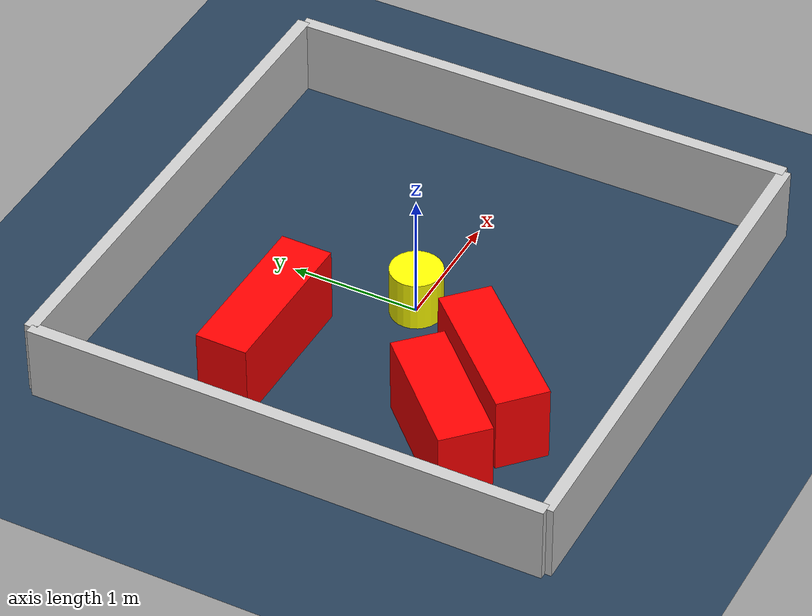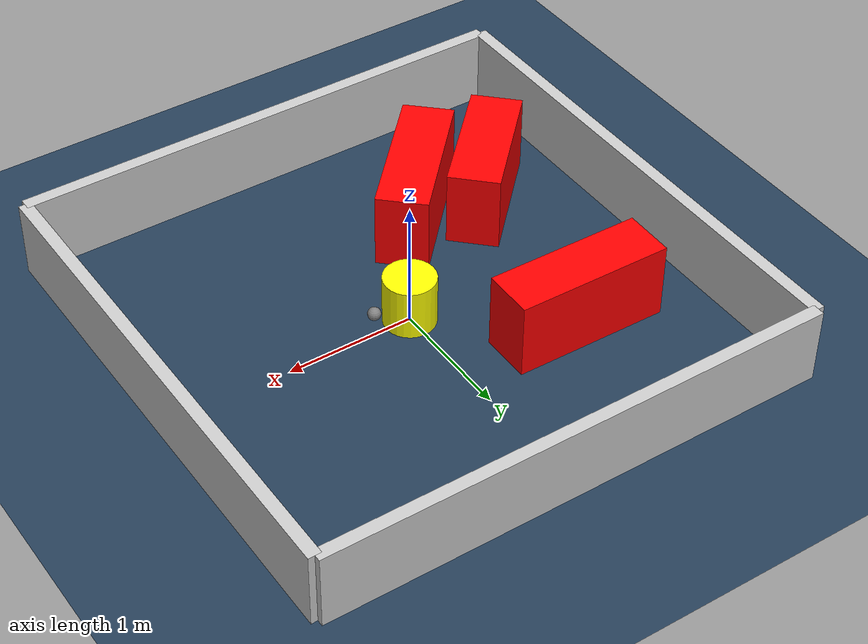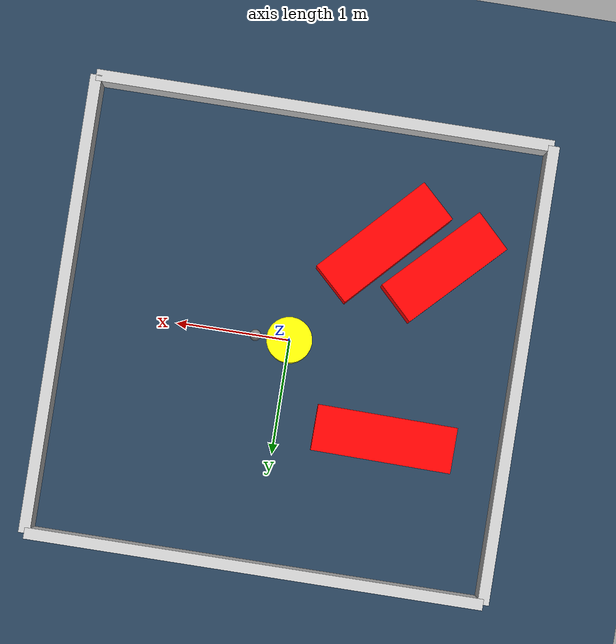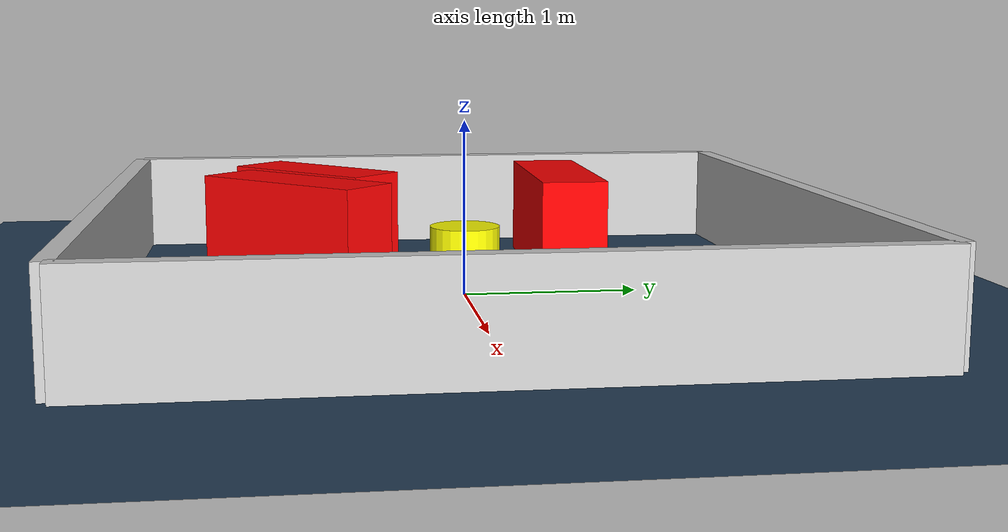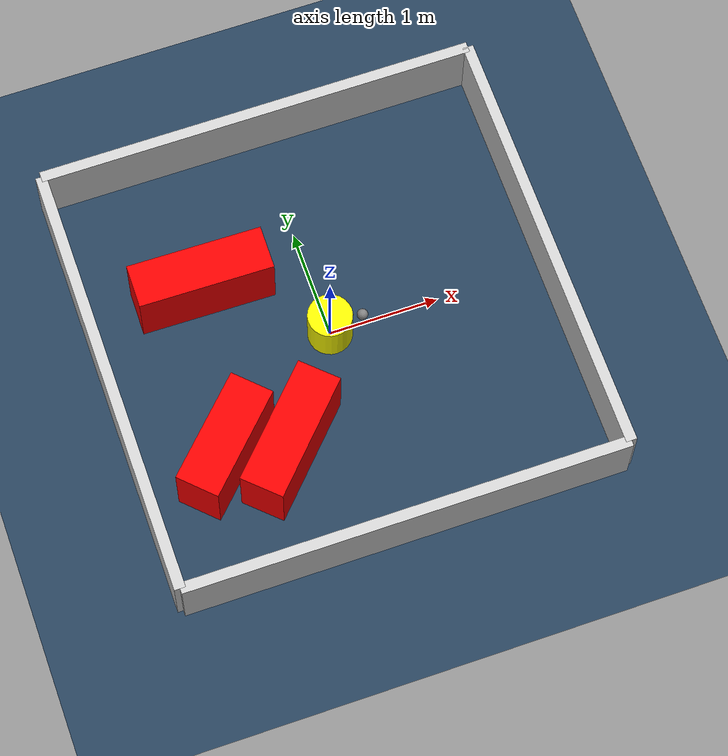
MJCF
<?xml version="1.0" ?>
<mujoco model="generated_environment">
  <option timestep="0.01" integrator="RK4" cone="elliptic"/>
  <default>
    <geom density="1"/>
  </default>
  <asset>
    <texture builtin="gradient" height="3072" rgb1="0.3 0.5 0.7" rgb2="0 0 0" type="skybox" width="512"/>
    <texture builtin="checker" height="300" mark="edge" markrgb="0.8 0.8 0.8" name="groundplane" rgb1="0.2 0.3 0.4" rgb2="0.1 0.2 0.3" type="2d" width="300"/>
    <material name="groundplane" reflectance="0.2" texrepeat="5 5" texture="groundplane" texuniform="true"/>
    <material name="robot" rgba="0.0 1.0 0.0 1"/>
  </asset>
  <worldbody>
    <light dir="0 0 -1" directional="true" pos="0 0 1.5"/>
    <geom condim="4" friction="1.0 0.005 0.001" material="groundplane" name="floor" size="0 0 0.05" type="plane"/>
    <body name="walls">
      <geom name="wall_1" condim="4" pos="-2.0 0.0 0.3" rgba="0.800000011920929 0.800000011920929 0.800000011920929 1.0" size="0.05 2.0 0.3" type="box"/>
      <geom name="wall_2" condim="4" pos="2.0 0.0 0.3" rgba="0.800000011920929 0.800000011920929 0.800000011920929 1.0" size="0.05 2.0 0.3" type="box"/>
      <geom name="wall_3" condim="4" pos="0.0 -2.0 0.3" rgba="0.800000011920929 0.800000011920929 0.800000011920929 1.0" size="2.0 0.05 0.3" type="box"/>
      <geom name="wall_4" condim="4" pos="0.0 2.0 0.3" rgba="0.800000011920929 0.800000011920929 0.800000011920929 1.0" size="2.0 0.05 0.3" type="box"/>
    </body>
    <body name="robot">
      <joint name="joint_x" type="slide" pos="0 0 0" axis="1 0 0"/>
      <joint name="joint_y" type="slide" pos="0 0 0" axis="0 1 0"/>
      <geom name="robot" type="sphere" pos="0.3 0.0 0.2" size="0.05" mass="5." friction="1.0 0.005 0.0001" condim="4" rgba="0.5 0.5 0.5 1.0"/>
      <site name="sensor_ball"/>
    </body>
    <body name="obstacle_movable_1">
      <geom name="obstacle_movable_1" condim="4" pos="0.0 0.0 0.2" euler="0 0 0.0" friction="1.0 0.005 0.001" rgba="1.0 1.0 0.0 1.0" size="0.2 0.2 0.0" type="cylinder" mass="0.1"/>
      <joint type="free"/>
    </body>
    <body name="obstacle_2_static">
      <geom name="obstacle_2_static" condim="4" pos="-0.9403239719200898 0.7211148291514851 0.3" euler="0 0 359.13831400284306" friction="1.0 0.005 0.001" rgba="1 0 0 1" size="0.6097919417529514 0.2 0.3" type="box"/>
    </body>
    <body name="obstacle_3_static">
      <geom name="obstacle_3_static" condim="4" pos="-1.225758136424893 -0.8234597680818356 0.3" euler="0 0 225.4351515216852" friction="1.0 0.005 0.001" rgba="1 0 0 1" size="0.5252593612091253 0.2 0.3" type="box"/>
    </body>
    <body name="obstacle_4_static">
      <geom name="obstacle_4_static" condim="4" pos="-0.6817355082027867 -0.9539965098091743 0.3" euler="0 0 46.59784157498961" friction="1.0 0.005 0.001" rgba="1 0 0 1" size="0.5879156162347686 0.2 0.3" type="box"/>
    </body>
  </worldbody>
  <actuator>
    <motor name="actuator_x" joint="joint_x" gear="1" ctrlrange="-1 1"/>
    <motor name="actuator_y" joint="joint_y" gear="1" ctrlrange="-1 1"/>
  </actuator>
</mujoco>
